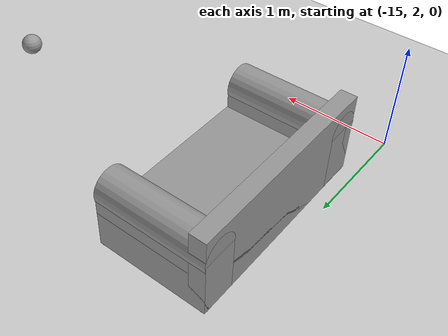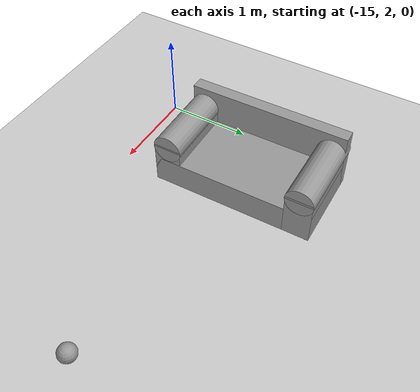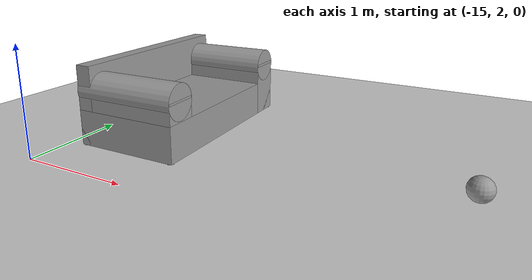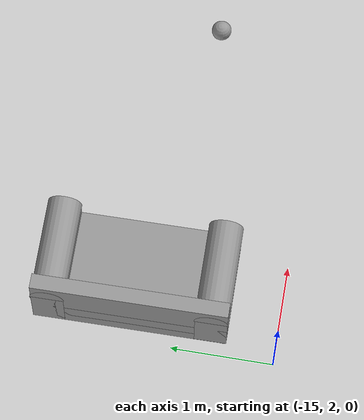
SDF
<sdf version="1.6">
 <world name="default">
  <model name="ground_plane">
   <static>1</static>
   <link name="link">
    <collision name="collision">
     <geometry><plane><normal>0 0 1</normal><size>100 100</size></plane></geometry>
     <surface>
      <contact><collide_bitmask>65535</collide_bitmask></contact>
      <friction><ode><mu>100</mu><mu2>50</mu2></ode></friction>
     </surface>
    </collision>
    <visual name="visual">
     <cast_shadows>0</cast_shadows>
     <geometry><plane><normal>0 0 1</normal><size>100 100</size></plane></geometry>
     <material>
      <script><uri>file://media/materials/scripts/gazebo.material</uri><name>Gazebo/Grey</name></script>
     </material>
    </visual>
   </link>
  </model>
  <model name="couch2.0_3">
   <link name="link_0">
    <pose>0 0.042624 -0.025032 0 -0 0</pose>
    <inertial>
     <mass>0.629351</mass>
     <inertia>
      <ixx>0.0582683</ixx>
      <ixy>0</ixy>
      <ixz>0</ixz>
      <iyy>0.192922</iyy>
      <iyz>0</iyz>
      <izz>0.239546</izz>
     </inertia>
    </inertial>
    <visual name="visual">
     <geometry><box><size>1.88878 1 0.33319</size></box></geometry>
     <material>
      <lighting>1</lighting>
      <script><uri>file://media/materials/scripts/gazebo.material</uri><name>Gazebo/Grey</name></script>
      <shader type="pixel"><normal_map>__default__</normal_map></shader>
      <ambient>0.3 0.3 0.3 1</ambient>
      <diffuse>0.7 0.7 0.7 1</diffuse>
      <specular>0.01 0.01 0.01 1</specular>
      <emissive>0 0 0 1</emissive>
     </material>
    </visual>
    <collision name="collision">
     <geometry><box><size>1.88878 1 0.33319</size></box></geometry>
     <surface>
      <friction>
       <ode><mu>1</mu><mu2>1</mu2><fdir1>0 0 0</fdir1><slip1>0</slip1><slip2>0</slip2></ode>
       <torsional>
        <coefficient>1</coefficient>
        <patch_radius>0</patch_radius>
        <surface_radius>0</surface_radius>
        <use_patch_radius>1</use_patch_radius>
        <ode><slip>0</slip></ode>
       </torsional>
      </friction>
      <bounce><restitution_coefficient>0</restitution_coefficient><threshold>1e+06</threshold></bounce>
      <contact>
       <collide_without_contact>0</collide_without_contact>
       <collide_without_contact_bitmask>1</collide_without_contact_bitmask>
       <collide_bitmask>1</collide_bitmask>
       <ode>
        <soft_cfm>0</soft_cfm>
        <soft_erp>0.2</soft_erp>
        <kp>1e+13</kp>
        <kd>1</kd>
        <max_vel>0.01</max_vel>
        <min_depth>0</min_depth>
       </ode>
       <bullet>
        <split_impulse>1</split_impulse>
        <split_impulse_penetration_threshold>-0.01</split_impulse_penetration_threshold>
        <soft_cfm>0</soft_cfm>
        <soft_erp>0.2</soft_erp>
        <kp>1e+13</kp>
        <kd>1</kd>
       </bullet>
      </contact>
     </surface>
    </collision>
   </link>
   <link name="link_0_clone">
    <pose>0 -0.383981 0.182545 0 -0 0</pose>
    <inertial>
     <mass>0.207466</mass>
     <inertia>
      <ixx>0.0100546</ixx>
      <ixy>0</ixy>
      <ixz>0</ixz>
      <iyy>0.0713599</iyy>
      <iyz>0</iyz>
      <izz>0.0620503</izz>
     </inertia>
    </inertial>
    <visual name="visual">
     <geometry><box><size>1.88878 0.146789 0.748345</size></box></geometry>
     <material>
      <lighting>1</lighting>
      <script><uri>file://media/materials/scripts/gazebo.material</uri><name>Gazebo/Grey</name></script>
      <shader type="pixel"><normal_map>__default__</normal_map></shader>
      <ambient>0.3 0.3 0.3 1</ambient>
      <diffuse>0.7 0.7 0.7 1</diffuse>
      <specular>0.01 0.01 0.01 1</specular>
      <emissive>0 0 0 1</emissive>
     </material>
    </visual>
    <collision name="collision">
     <geometry><box><size>1.88878 0.146789 0.748345</size></box></geometry>
     <surface>
      <friction>
       <ode><mu>1</mu><mu2>1</mu2><fdir1>0 0 0</fdir1><slip1>0</slip1><slip2>0</slip2></ode>
       <torsional>
        <coefficient>1</coefficient>
        <patch_radius>0</patch_radius>
        <surface_radius>0</surface_radius>
        <use_patch_radius>1</use_patch_radius>
        <ode><slip>0</slip></ode>
       </torsional>
      </friction>
      <bounce><restitution_coefficient>0</restitution_coefficient><threshold>1e+06</threshold></bounce>
      <contact>
       <collide_without_contact>0</collide_without_contact>
       <collide_without_contact_bitmask>1</collide_without_contact_bitmask>
       <collide_bitmask>1</collide_bitmask>
       <ode>
        <soft_cfm>0</soft_cfm>
        <soft_erp>0.2</soft_erp>
        <kp>1e+13</kp>
        <kd>1</kd>
        <max_vel>0.01</max_vel>
        <min_depth>0</min_depth>
       </ode>
       <bullet>
        <split_impulse>1</split_impulse>
        <split_impulse_penetration_threshold>-0.01</split_impulse_penetration_threshold>
        <soft_cfm>0</soft_cfm>
        <soft_erp>0.2</soft_erp>
        <kp>1e+13</kp>
        <kd>1</kd>
       </bullet>
      </contact>
     </surface>
    </collision>
   </link>
   <link name="link_1">
    <pose>-0.909335 -0.422322 -0.235214 0 -0 0</pose>
    <inertial>
     <mass>0.000500743</mass>
     <inertia>
      <ixx>5.85623e-07</ixx>
      <ixy>0</ixy>
      <ixz>0</ixz>
      <iyy>5.85623e-07</iyy>
      <iyz>0</iyz>
      <izz>3.07643e-07</izz>
     </inertia>
    </inertial>
    <visual name="visual">
     <geometry><cylinder><radius>0.0350535</radius><length>0.101724</length></cylinder></geometry>
     <material>
      <lighting>1</lighting>
      <script><uri>file://media/materials/scripts/gazebo.material</uri><name>Gazebo/Grey</name></script>
      <shader type="pixel"/>
      <ambient>0.3 0.3 0.3 1</ambient>
      <diffuse>0.7 0.7 0.7 1</diffuse>
      <specular>0.01 0.01 0.01 1</specular>
      <emissive>0 0 0 1</emissive>
     </material>
    </visual>
    <collision name="collision">
     <geometry><cylinder><radius>0.035053</radius><length>0.101724</length></cylinder></geometry>
     <surface>
      <friction>
       <ode><mu>1</mu><mu2>1</mu2><fdir1>0 0 0</fdir1><slip1>0</slip1><slip2>0</slip2></ode>
       <torsional>
        <coefficient>1</coefficient>
        <patch_radius>0</patch_radius>
        <surface_radius>0</surface_radius>
        <use_patch_radius>1</use_patch_radius>
        <ode><slip>0</slip></ode>
       </torsional>
      </friction>
      <bounce><restitution_coefficient>0</restitution_coefficient><threshold>1e+06</threshold></bounce>
      <contact>
       <collide_without_contact>0</collide_without_contact>
       <collide_without_contact_bitmask>1</collide_without_contact_bitmask>
       <collide_bitmask>1</collide_bitmask>
       <ode>
        <soft_cfm>0</soft_cfm>
        <soft_erp>0.2</soft_erp>
        <kp>1e+13</kp>
        <kd>1</kd>
        <max_vel>0.01</max_vel>
        <min_depth>0</min_depth>
       </ode>
       <bullet>
        <split_impulse>1</split_impulse>
        <split_impulse_penetration_threshold>-0.01</split_impulse_penetration_threshold>
        <soft_cfm>0</soft_cfm>
        <soft_erp>0.2</soft_erp>
        <kp>1e+13</kp>
        <kd>1</kd>
       </bullet>
      </contact>
     </surface>
    </collision>
   </link>
   <link name="link_1_clone">
    <pose>-0.909335 0.507571 -0.235214 0 -0 0</pose>
    <inertial>
     <mass>0.000500743</mass>
     <inertia>
      <ixx>5.85623e-07</ixx>
      <ixy>0</ixy>
      <ixz>0</ixz>
      <iyy>5.85623e-07</iyy>
      <iyz>0</iyz>
      <izz>3.07643e-07</izz>
     </inertia>
    </inertial>
    <visual name="visual">
     <geometry><cylinder><radius>0.0350535</radius><length>0.101724</length></cylinder></geometry>
     <material>
      <lighting>1</lighting>
      <script><uri>file://media/materials/scripts/gazebo.material</uri><name>Gazebo/Grey</name></script>
      <shader type="pixel"/>
      <ambient>0.3 0.3 0.3 1</ambient>
      <diffuse>0.7 0.7 0.7 1</diffuse>
      <specular>0.01 0.01 0.01 1</specular>
      <emissive>0 0 0 1</emissive>
     </material>
    </visual>
    <collision name="collision">
     <geometry><cylinder><radius>0.035053</radius><length>0.101724</length></cylinder></geometry>
     <surface>
      <friction>
       <ode><mu>1</mu><mu2>1</mu2><fdir1>0 0 0</fdir1><slip1>0</slip1><slip2>0</slip2></ode>
       <torsional>
        <coefficient>1</coefficient>
        <patch_radius>0</patch_radius>
        <surface_radius>0</surface_radius>
        <use_patch_radius>1</use_patch_radius>
        <ode><slip>0</slip></ode>
       </torsional>
      </friction>
      <bounce><restitution_coefficient>0</restitution_coefficient><threshold>1e+06</threshold></bounce>
      <contact>
       <collide_without_contact>0</collide_without_contact>
       <collide_without_contact_bitmask>1</collide_without_contact_bitmask>
       <collide_bitmask>1</collide_bitmask>
       <ode>
        <soft_cfm>0</soft_cfm>
        <soft_erp>0.2</soft_erp>
        <kp>1e+13</kp>
        <kd>1</kd>
        <max_vel>0.01</max_vel>
        <min_depth>0</min_depth>
       </ode>
       <bullet>
        <split_impulse>1</split_impulse>
        <split_impulse_penetration_threshold>-0.01</split_impulse_penetration_threshold>
        <soft_cfm>0</soft_cfm>
        <soft_erp>0.2</soft_erp>
        <kp>1e+13</kp>
        <kd>1</kd>
       </bullet>
      </contact>
     </surface>
    </collision>
   </link>
   <link name="link_1_clone_0">
    <pose>0.909335 -0.422322 -0.235214 0 -0 0</pose>
    <inertial>
     <mass>0.000500743</mass>
     <inertia>
      <ixx>5.85623e-07</ixx>
      <ixy>0</ixy>
      <ixz>0</ixz>
      <iyy>5.85623e-07</iyy>
      <iyz>0</iyz>
      <izz>3.07643e-07</izz>
     </inertia>
    </inertial>
    <visual name="visual">
     <geometry><cylinder><radius>0.0350535</radius><length>0.101724</length></cylinder></geometry>
     <material>
      <lighting>1</lighting>
      <script><uri>file://media/materials/scripts/gazebo.material</uri><name>Gazebo/Grey</name></script>
      <shader type="pixel"/>
      <ambient>0.3 0.3 0.3 1</ambient>
      <diffuse>0.7 0.7 0.7 1</diffuse>
      <specular>0.01 0.01 0.01 1</specular>
      <emissive>0 0 0 1</emissive>
     </material>
    </visual>
    <collision name="collision">
     <geometry><cylinder><radius>0.035053</radius><length>0.101724</length></cylinder></geometry>
     <surface>
      <friction>
       <ode><mu>1</mu><mu2>1</mu2><fdir1>0 0 0</fdir1><slip1>0</slip1><slip2>0</slip2></ode>
       <torsional>
        <coefficient>1</coefficient>
        <patch_radius>0</patch_radius>
        <surface_radius>0</surface_radius>
        <use_patch_radius>1</use_patch_radius>
        <ode><slip>0</slip></ode>
       </torsional>
      </friction>
      <bounce><restitution_coefficient>0</restitution_coefficient><threshold>1e+06</threshold></bounce>
      <contact>
       <collide_without_contact>0</collide_without_contact>
       <collide_without_contact_bitmask>1</collide_without_contact_bitmask>
       <collide_bitmask>1</collide_bitmask>
       <ode>
        <soft_cfm>0</soft_cfm>
        <soft_erp>0.2</soft_erp>
        <kp>1e+13</kp>
        <kd>1</kd>
        <max_vel>0.01</max_vel>
        <min_depth>0</min_depth>
       </ode>
       <bullet>
        <split_impulse>1</split_impulse>
        <split_impulse_penetration_threshold>-0.01</split_impulse_penetration_threshold>
        <soft_cfm>0</soft_cfm>
        <soft_erp>0.2</soft_erp>
        <kp>1e+13</kp>
        <kd>1</kd>
       </bullet>
      </contact>
     </surface>
    </collision>
   </link>
   <link name="link_1_clone_1">
    <pose>0.909335 0.507571 -0.235214 0 -0 0</pose>
    <inertial>
     <mass>0.000500743</mass>
     <inertia>
      <ixx>5.85623e-07</ixx>
      <ixy>0</ixy>
      <ixz>0</ixz>
      <iyy>5.85623e-07</iyy>
      <iyz>0</iyz>
      <izz>3.07643e-07</izz>
     </inertia>
    </inertial>
    <visual name="visual">
     <geometry><cylinder><radius>0.0350535</radius><length>0.101724</length></cylinder></geometry>
     <material>
      <lighting>1</lighting>
      <script><uri>file://media/materials/scripts/gazebo.material</uri><name>Gazebo/Grey</name></script>
      <shader type="pixel"/>
      <ambient>0.3 0.3 0.3 1</ambient>
      <diffuse>0.7 0.7 0.7 1</diffuse>
      <specular>0.01 0.01 0.01 1</specular>
      <emissive>0 0 0 1</emissive>
     </material>
    </visual>
    <collision name="collision">
     <geometry><cylinder><radius>0.035053</radius><length>0.101724</length></cylinder></geometry>
     <surface>
      <friction>
       <ode><mu>1</mu><mu2>1</mu2><fdir1>0 0 0</fdir1><slip1>0</slip1><slip2>0</slip2></ode>
       <torsional>
        <coefficient>1</coefficient>
        <patch_radius>0</patch_radius>
        <surface_radius>0</surface_radius>
        <use_patch_radius>1</use_patch_radius>
        <ode><slip>0</slip></ode>
       </torsional>
      </friction>
      <bounce><restitution_coefficient>0</restitution_coefficient><threshold>1e+06</threshold></bounce>
      <contact>
       <collide_without_contact>0</collide_without_contact>
       <collide_without_contact_bitmask>1</collide_without_contact_bitmask>
       <collide_bitmask>1</collide_bitmask>
       <ode>
        <soft_cfm>0</soft_cfm>
        <soft_erp>0.2</soft_erp>
        <kp>1e+13</kp>
        <kd>1</kd>
        <max_vel>0.01</max_vel>
        <min_depth>0</min_depth>
       </ode>
       <bullet>
        <split_impulse>1</split_impulse>
        <split_impulse_penetration_threshold>-0.01</split_impulse_penetration_threshold>
        <soft_cfm>0</soft_cfm>
        <soft_erp>0.2</soft_erp>
        <kp>1e+13</kp>
        <kd>1</kd>
       </bullet>
      </contact>
     </surface>
    </collision>
   </link>
   <link name="link_3">
    <pose>-0.787536 0.042624 0.075794 0 -0 0</pose>
    <inertial>
     <mass>0.167781</mass>
     <inertia>
      <ixx>0.0179813</ixx>
      <ixy>0</ixy>
      <ixz>0</ixz>
      <iyy>0.0053755</iyy>
      <iyz>0</iyz>
      <izz>0.0153577</izz>
     </inertia>
    </inertial>
    <visual name="visual">
     <geometry><box><size>0.313705 1 0.534841</size></box></geometry>
     <material>
      <lighting>1</lighting>
      <script><uri>file://media/materials/scripts/gazebo.material</uri><name>Gazebo/Grey</name></script>
      <shader type="pixel"/>
      <ambient>0.3 0.3 0.3 1</ambient>
      <diffuse>0.7 0.7 0.7 1</diffuse>
      <specular>0.01 0.01 0.01 1</specular>
      <emissive>0 0 0 1</emissive>
     </material>
    </visual>
    <collision name="collision">
     <geometry><box><size>0.313705 1 0.534841</size></box></geometry>
     <surface>
      <friction>
       <ode><mu>1</mu><mu2>1</mu2><fdir1>0 0 0</fdir1><slip1>0</slip1><slip2>0</slip2></ode>
       <torsional>
        <coefficient>1</coefficient>
        <patch_radius>0</patch_radius>
        <surface_radius>0</surface_radius>
        <use_patch_radius>1</use_patch_radius>
        <ode><slip>0</slip></ode>
       </torsional>
      </friction>
      <bounce><restitution_coefficient>0</restitution_coefficient><threshold>1e+06</threshold></bounce>
      <contact>
       <collide_without_contact>0</collide_without_contact>
       <collide_without_contact_bitmask>1</collide_without_contact_bitmask>
       <collide_bitmask>1</collide_bitmask>
       <ode>
        <soft_cfm>0</soft_cfm>
        <soft_erp>0.2</soft_erp>
        <kp>1e+13</kp>
        <kd>1</kd>
        <max_vel>0.01</max_vel>
        <min_depth>0</min_depth>
       </ode>
       <bullet>
        <split_impulse>1</split_impulse>
        <split_impulse_penetration_threshold>-0.01</split_impulse_penetration_threshold>
        <soft_cfm>0</soft_cfm>
        <soft_erp>0.2</soft_erp>
        <kp>1e+13</kp>
        <kd>1</kd>
       </bullet>
      </contact>
     </surface>
    </collision>
   </link>
   <link name="link_3_clone">
    <pose>0.787536 0.042624 0.075794 0 -0 0</pose>
    <inertial>
     <mass>0.163893</mass>
     <inertia>
      <ixx>0.0173856</ixx>
      <ixy>0</ixy>
      <ixz>0</ixz>
      <iyy>0.00507196</iyy>
      <iyz>0</iyz>
      <izz>0.0150018</izz>
     </inertia>
    </inertial>
    <visual name="visual">
     <geometry><box><size>0.313705 1 0.522447</size></box></geometry>
     <material>
      <lighting>1</lighting>
      <script><uri>file://media/materials/scripts/gazebo.material</uri><name>Gazebo/Grey</name></script>
      <shader type="pixel"><normal_map>__default__</normal_map></shader>
      <ambient>0.3 0.3 0.3 1</ambient>
      <diffuse>0.7 0.7 0.7 1</diffuse>
      <specular>0.01 0.01 0.01 1</specular>
      <emissive>0 0 0 1</emissive>
     </material>
    </visual>
    <collision name="collision">
     <geometry><box><size>0.313705 1 0.522447</size></box></geometry>
     <surface>
      <friction>
       <ode><mu>1</mu><mu2>1</mu2><fdir1>0 0 0</fdir1><slip1>0</slip1><slip2>0</slip2></ode>
       <torsional>
        <coefficient>1</coefficient>
        <patch_radius>0</patch_radius>
        <surface_radius>0</surface_radius>
        <use_patch_radius>1</use_patch_radius>
        <ode><slip>0</slip></ode>
       </torsional>
      </friction>
      <bounce><restitution_coefficient>0</restitution_coefficient><threshold>1e+06</threshold></bounce>
      <contact>
       <collide_without_contact>0</collide_without_contact>
       <collide_without_contact_bitmask>1</collide_without_contact_bitmask>
       <collide_bitmask>1</collide_bitmask>
       <ode>
        <soft_cfm>0</soft_cfm>
        <soft_erp>0.2</soft_erp>
        <kp>1e+13</kp>
        <kd>1</kd>
        <max_vel>0.01</max_vel>
        <min_depth>0</min_depth>
       </ode>
       <bullet>
        <split_impulse>1</split_impulse>
        <split_impulse_penetration_threshold>-0.01</split_impulse_penetration_threshold>
        <soft_cfm>0</soft_cfm>
        <soft_erp>0.2</soft_erp>
        <kp>1e+13</kp>
        <kd>1</kd>
       </bullet>
      </contact>
     </surface>
    </collision>
   </link>
   <link name="link_4">
    <pose>0.787536 0.042624 0.315876 1.573 -0 0</pose>
    <inertial>
     <mass>0.110343</mass>
     <inertia>
      <ixx>0.00995618</ixx>
      <ixy>0</ixy>
      <ixz>0</ixz>
      <iyy>0.00995618</iyy>
      <iyz>0</iyz>
      <izz>0.00152191</izz>
     </inertia>
     <pose>0 0 0 0 1.51 0</pose>
    </inertial>
    <visual name="visual">
     <geometry><cylinder><radius>0.166088</radius><length>1</length></cylinder></geometry>
     <material>
      <lighting>1</lighting>
      <script><uri>file://media/materials/scripts/gazebo.material</uri><name>Gazebo/Grey</name></script>
      <shader type="pixel"><normal_map>__default__</normal_map></shader>
      <ambient>0.3 0.3 0.3 1</ambient>
      <diffuse>0.7 0.7 0.7 1</diffuse>
      <specular>0.01 0.01 0.01 1</specular>
      <emissive>0 0 0 1</emissive>
     </material>
    </visual>
    <collision name="collision">
     <geometry><cylinder><radius>0.166088</radius><length>1</length></cylinder></geometry>
     <surface>
      <friction>
       <ode><mu>1</mu><mu2>1</mu2><fdir1>0 0 0</fdir1><slip1>0</slip1><slip2>0</slip2></ode>
       <torsional>
        <coefficient>1</coefficient>
        <patch_radius>0</patch_radius>
        <surface_radius>0</surface_radius>
        <use_patch_radius>1</use_patch_radius>
        <ode><slip>0</slip></ode>
       </torsional>
      </friction>
      <bounce><restitution_coefficient>0</restitution_coefficient><threshold>1e+06</threshold></bounce>
      <contact>
       <collide_without_contact>0</collide_without_contact>
       <collide_without_contact_bitmask>1</collide_without_contact_bitmask>
       <collide_bitmask>1</collide_bitmask>
       <ode>
        <soft_cfm>0</soft_cfm>
        <soft_erp>0.2</soft_erp>
        <kp>1e+13</kp>
        <kd>1</kd>
        <max_vel>0.01</max_vel>
        <min_depth>0</min_depth>
       </ode>
       <bullet>
        <split_impulse>1</split_impulse>
        <split_impulse_penetration_threshold>-0.01</split_impulse_penetration_threshold>
        <soft_cfm>0</soft_cfm>
        <soft_erp>0.2</soft_erp>
        <kp>1e+13</kp>
        <kd>1</kd>
       </bullet>
      </contact>
     </surface>
    </collision>
   </link>
   <link name="link_4_clone">
    <pose>-0.787536 0.042624 0.315877 1.573 -0 0</pose>
    <inertial>
     <mass>0.110343</mass>
     <inertia>
      <ixx>0.00995618</ixx>
      <ixy>0</ixy>
      <ixz>0</ixz>
      <iyy>0.00995618</iyy>
      <iyz>0</iyz>
      <izz>0.00152191</izz>
     </inertia>
     <pose>0 0 0 0 1.51 0</pose>
    </inertial>
    <visual name="visual">
     <geometry><cylinder><radius>0.166088</radius><length>1</length></cylinder></geometry>
     <material>
      <lighting>1</lighting>
      <script><uri>file://media/materials/scripts/gazebo.material</uri><name>Gazebo/Grey</name></script>
      <shader type="pixel"><normal_map>__default__</normal_map></shader>
      <ambient>0.3 0.3 0.3 1</ambient>
      <diffuse>0.7 0.7 0.7 1</diffuse>
      <specular>0.01 0.01 0.01 1</specular>
      <emissive>0 0 0 1</emissive>
     </material>
    </visual>
    <collision name="collision">
     <geometry><cylinder><radius>0.166088</radius><length>1</length></cylinder></geometry>
     <surface>
      <friction>
       <ode><mu>1</mu><mu2>1</mu2><fdir1>0 0 0</fdir1><slip1>0</slip1><slip2>0</slip2></ode>
       <torsional>
        <coefficient>1</coefficient>
        <patch_radius>0</patch_radius>
        <surface_radius>0</surface_radius>
        <use_patch_radius>1</use_patch_radius>
        <ode><slip>0</slip></ode>
       </torsional>
      </friction>
      <bounce><restitution_coefficient>0</restitution_coefficient><threshold>1e+06</threshold></bounce>
      <contact>
       <collide_without_contact>0</collide_without_contact>
       <collide_without_contact_bitmask>1</collide_without_contact_bitmask>
       <collide_bitmask>1</collide_bitmask>
       <ode>
        <soft_cfm>0</soft_cfm>
        <soft_erp>0.2</soft_erp>
        <kp>1e+13</kp>
        <kd>1</kd>
        <max_vel>0.01</max_vel>
        <min_depth>0</min_depth>
       </ode>
       <bullet>
        <split_impulse>1</split_impulse>
        <split_impulse_penetration_threshold>-0.01</split_impulse_penetration_threshold>
        <soft_cfm>0</soft_cfm>
        <soft_erp>0.2</soft_erp>
        <kp>1e+13</kp>
        <kd>1</kd>
       </bullet>
      </contact>
     </surface>
    </collision>
   </link>
   <joint name="link_0_JOINT_0" type="fixed">
    <parent>link_0</parent>
    <child>link_1</child>
    <physics>
     <ode><limit><cfm>0</cfm><erp>0.2</erp></limit><suspension><cfm>0</cfm><erp>0.2</erp></suspension></ode>
    </physics>
   </joint>
   <joint name="link_0_JOINT_1" type="fixed">
    <parent>link_0</parent>
    <child>link_1_clone</child>
    <physics>
     <ode><limit><cfm>0</cfm><erp>0.2</erp></limit><suspension><cfm>0</cfm><erp>0.2</erp></suspension></ode>
    </physics>
   </joint>
   <joint name="link_0_JOINT_2" type="fixed">
    <parent>link_0</parent>
    <child>link_1_clone_0</child>
    <physics>
     <ode><limit><cfm>0</cfm><erp>0.2</erp></limit><suspension><cfm>0</cfm><erp>0.2</erp></suspension></ode>
    </physics>
   </joint>
   <joint name="link_0_JOINT_3" type="fixed">
    <parent>link_0</parent>
    <child>link_1_clone_1</child>
    <physics>
     <ode><limit><cfm>0</cfm><erp>0.2</erp></limit><suspension><cfm>0</cfm><erp>0.2</erp></suspension></ode>
    </physics>
   </joint>
   <joint name="link_0_JOINT_4" type="fixed">
    <parent>link_0</parent>
    <child>link_3</child>
    <physics>
     <ode><limit><cfm>0</cfm><erp>0.2</erp></limit><suspension><cfm>0</cfm><erp>0.2</erp></suspension></ode>
    </physics>
   </joint>
   <joint name="link_0_JOINT_5" type="fixed">
    <parent>link_0</parent>
    <child>link_3_clone</child>
    <physics>
     <ode><limit><cfm>0</cfm><erp>0.2</erp></limit><suspension><cfm>0</cfm><erp>0.2</erp></suspension></ode>
    </physics>
   </joint>
   <joint name="link_0_JOINT_9" type="fixed">
    <parent>link_0</parent>
    <child>link_0_clone</child>
    <physics>
     <ode><limit><cfm>0</cfm><erp>0.2</erp></limit><suspension><cfm>0</cfm><erp>0.2</erp></suspension></ode>
    </physics>
   </joint>
   <joint name="link_4_JOINT_7" type="fixed">
    <parent>link_4</parent>
    <child>link_3_clone</child>
    <physics>
     <ode><limit><cfm>0</cfm><erp>0.2</erp></limit><suspension><cfm>0</cfm><erp>0.2</erp></suspension></ode>
    </physics>
   </joint>
   <joint name="link_4_clone_JOINT_8" type="fixed">
    <parent>link_3</parent>
    <child>link_4_clone</child>
    <physics>
     <ode><limit><cfm>0</cfm><erp>0.2</erp></limit><suspension><cfm>0</cfm><erp>0.2</erp></suspension></ode>
    </physics>
   </joint>
   <static>0</static>
   <pose>-14.4206 3.4278 0.191629 0 2e-06 -1.55761</pose>
  </model>
  <model name="white_ball">
   <link name="link_0">
    <inertial>
     <mass>1</mass>
     <inertia><ixx>0.1</ixx><ixy>0</ixy><ixz>0</ixz><iyy>0.1</iyy><iyz>0</iyz><izz>0.1</izz></inertia>
    </inertial>
    <visual name="visual">
     <geometry><sphere><radius>0.1</radius></sphere></geometry>
     <material>
      <lighting>1</lighting>
      <script><uri>file://media/materials/scripts/gazebo.material</uri><name>Gazebo/Grey</name></script>
      <shader type="pixel"><normal_map>__default__</normal_map></shader>
      <ambient>1 1 1 1</ambient>
      <diffuse>1 1 1 1</diffuse>
      <specular>1 1 1 1</specular>
      <emissive>0 0 0 1</emissive>
     </material>
    </visual>
    <collision name="collision">
     <geometry><sphere><radius>0.1</radius></sphere></geometry>
     <surface>
      <friction>
       <ode><mu>1</mu><mu2>1</mu2><fdir1>0 0 0</fdir1><slip1>0</slip1><slip2>0</slip2></ode>
       <torsional>
        <coefficient>1</coefficient>
        <patch_radius>0</patch_radius>
        <surface_radius>0</surface_radius>
        <use_patch_radius>1</use_patch_radius>
        <ode><slip>0</slip></ode>
       </torsional>
      </friction>
      <bounce><restitution_coefficient>0</restitution_coefficient><threshold>1e+06</threshold></bounce>
      <contact>
       <collide_without_contact>0</collide_without_contact>
       <collide_without_contact_bitmask>1</collide_without_contact_bitmask>
       <collide_bitmask>1</collide_bitmask>
       <ode>
        <soft_cfm>0</soft_cfm>
        <soft_erp>0.2</soft_erp>
        <kp>1e+13</kp>
        <kd>1</kd>
        <max_vel>0.01</max_vel>
        <min_depth>0</min_depth>
       </ode>
       <bullet>
        <split_impulse>1</split_impulse>
        <split_impulse_penetration_threshold>-0.01</split_impulse_penetration_threshold>
        <soft_cfm>0</soft_cfm>
        <soft_erp>0.2</soft_erp>
        <kp>1e+13</kp>
        <kd>1</kd>
       </bullet>
      </contact>
     </surface>
    </collision>
   </link>
   <static>0</static>
   <pose>-11.5697 3.05545 0.1 0 -0 0</pose>
  </model>
 </world>
</sdf>
